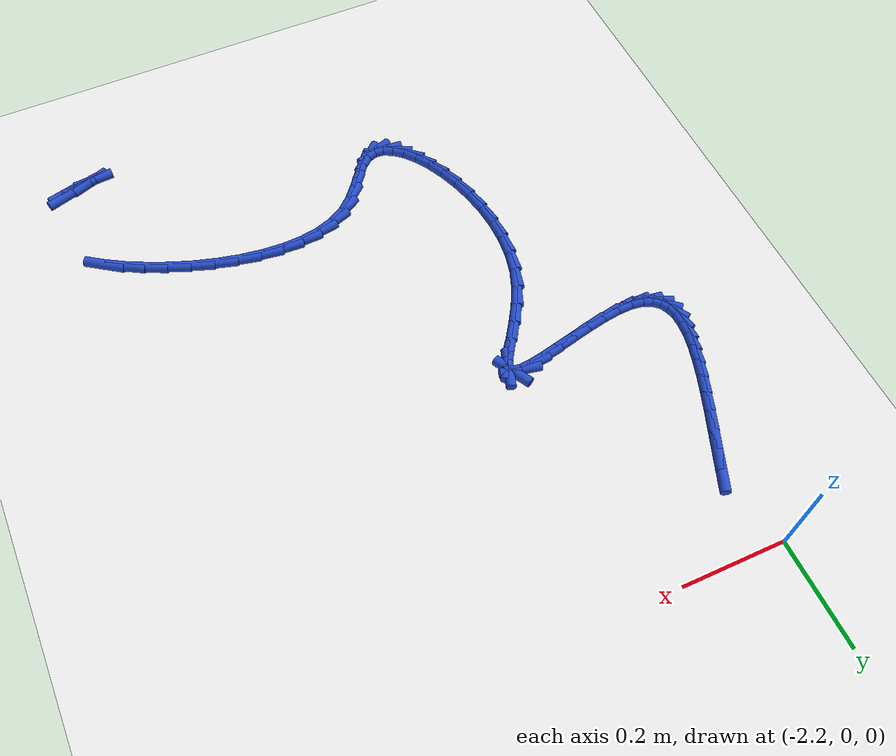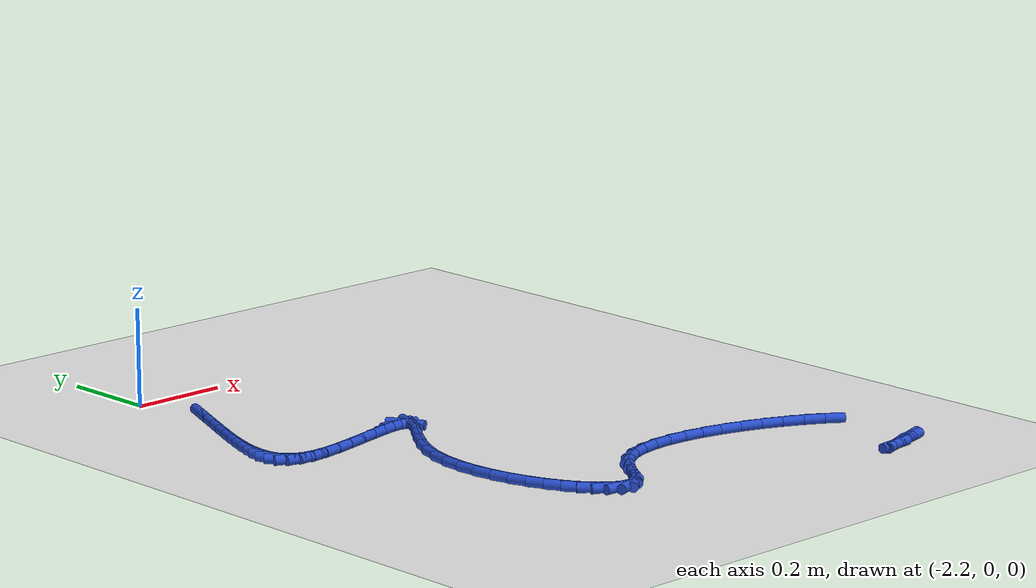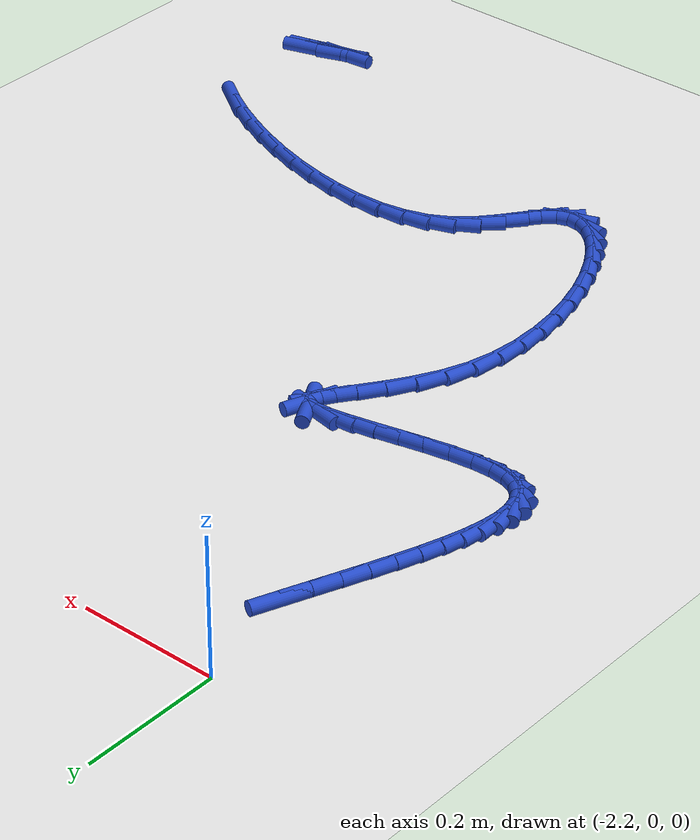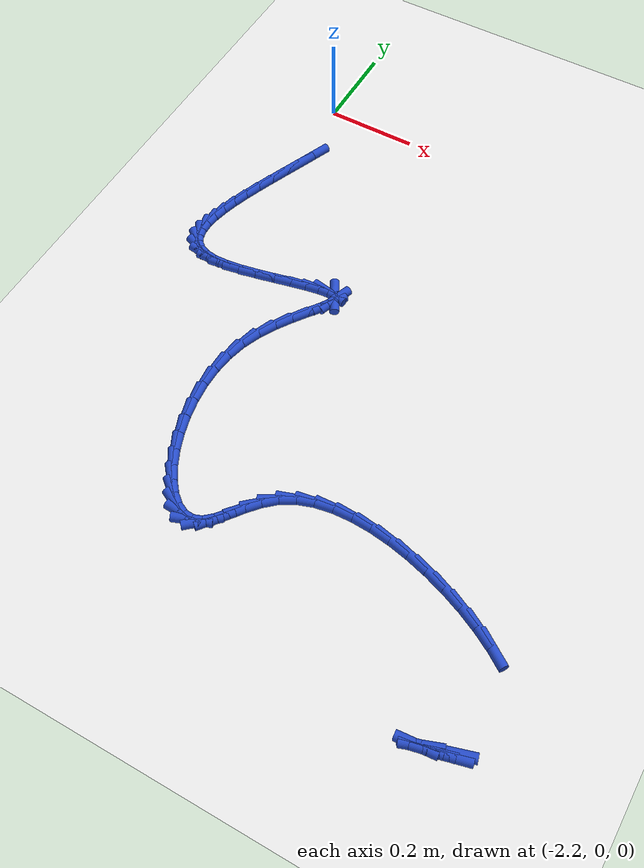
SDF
<sdf version="1.6">
 <world name="default">
  <model name="ground_plane">
   <static>1</static>
   <link name="link">
    <collision name="collision">
     <geometry><plane><normal>0 0 1</normal><size>100 100</size></plane></geometry>
     <surface><friction><ode><mu>100</mu><mu2>50</mu2></ode></friction></surface>
    </collision>
    <visual name="visual">
     <cast_shadows>0</cast_shadows>
     <geometry><plane><normal>0 0 1</normal><size>100 100</size></plane></geometry>
     <material>
      <script><uri>file://media/materials/scripts/gazebo.material</uri><name>Gazebo/WhiteGlow</name></script>
     </material>
    </visual>
   </link>
  </model>
  <model name="line">
   <link name="link_135">
    <pose>-2.1685829158343854 -0.15059904940419178 0.01 0 1.57 1.188751834584261</pose>
    <collision name="collision">
     <geometry><cylinder><radius>0.01</radius><length>0.08</length></cylinder></geometry>
    </collision>
    <visual name="visual">
     <material>
      <script><name>Gazebo/Blue</name><uri>file://media/materials/scripts/gazebo.material</uri></script>
     </material>
     <geometry><cylinder><radius>0.01</radius><length>0.08</length></cylinder></geometry>
    </visual>
   </link>
   <link name="link_136">
    <pose>-2.1838940804013176 -0.18870687479999104 0.01 0 1.57 1.1853321499158203</pose>
    <collision name="collision">
     <geometry><cylinder><radius>0.01</radius><length>0.08</length></cylinder></geometry>
    </collision>
    <visual name="visual">
     <material>
      <script><name>Gazebo/Blue</name><uri>file://media/materials/scripts/gazebo.material</uri></script>
     </material>
     <geometry><cylinder><radius>0.01</radius><length>0.08</length></cylinder></geometry>
    </visual>
   </link>
   <link name="link_137">
    <pose>-2.199023079729025 -0.2259922288696817 0.01 0 1.57 1.1887583359852376</pose>
    <collision name="collision">
     <geometry><cylinder><radius>0.01</radius><length>0.08</length></cylinder></geometry>
    </collision>
    <visual name="visual">
     <material>
      <script><name>Gazebo/Blue</name><uri>file://media/materials/scripts/gazebo.material</uri></script>
     </material>
     <geometry><cylinder><radius>0.01</radius><length>0.08</length></cylinder></geometry>
    </visual>
   </link>
   <link name="link_138">
    <pose>-2.213570374557733 -0.26219954592275063 0.01 0 1.57 1.1998041386808038</pose>
    <collision name="collision">
     <geometry><cylinder><radius>0.01</radius><length>0.08</length></cylinder></geometry>
    </collision>
    <visual name="visual">
     <material>
      <script><name>Gazebo/Blue</name><uri>file://media/materials/scripts/gazebo.material</uri></script>
     </material>
     <geometry><cylinder><radius>0.01</radius><length>0.08</length></cylinder></geometry>
    </visual>
   </link>
   <link name="link_139">
    <pose>-2.2271364256276667 -0.2970732602686849 0.01 0 1.57 1.2198565449811853</pose>
    <collision name="collision">
     <geometry><cylinder><radius>0.01</radius><length>0.08</length></cylinder></geometry>
    </collision>
    <visual name="visual">
     <material>
      <script><name>Gazebo/Blue</name><uri>file://media/materials/scripts/gazebo.material</uri></script>
     </material>
     <geometry><cylinder><radius>0.01</radius><length>0.08</length></cylinder></geometry>
    </visual>
   </link>
   <link name="link_140">
    <pose>-2.2393216936790497 -0.3303578062169718 0.01 0 1.57 1.251194022805272</pose>
    <collision name="collision">
     <geometry><cylinder><radius>0.01</radius><length>0.08</length></cylinder></geometry>
    </collision>
    <visual name="visual">
     <material>
      <script><name>Gazebo/Blue</name><uri>file://media/materials/scripts/gazebo.material</uri></script>
     </material>
     <geometry><cylinder><radius>0.01</radius><length>0.08</length></cylinder></geometry>
    </visual>
   </link>
   <link name="link_141">
    <pose>-2.2497266394521076 -0.36179761807709726 0.01 0 1.57 1.2974709344288846</pose>
    <collision name="collision">
     <geometry><cylinder><radius>0.01</radius><length>0.08</length></cylinder></geometry>
    </collision>
    <visual name="visual">
     <material>
      <script><name>Gazebo/Blue</name><uri>file://media/materials/scripts/gazebo.material</uri></script>
     </material>
     <geometry><cylinder><radius>0.01</radius><length>0.08</length></cylinder></geometry>
    </visual>
   </link>
   <link name="link_142">
    <pose>-2.2579517236870648 -0.3911371301585488 0.01 0 1.57 1.3645454499683918</pose>
    <collision name="collision">
     <geometry><cylinder><radius>0.01</radius><length>0.08</length></cylinder></geometry>
    </collision>
    <visual name="visual">
     <material>
      <script><name>Gazebo/Blue</name><uri>file://media/materials/scripts/gazebo.material</uri></script>
     </material>
     <geometry><cylinder><radius>0.01</radius><length>0.08</length></cylinder></geometry>
    </visual>
   </link>
   <link name="link_143">
    <pose>-2.263597407124147 -0.4181207767708134 0.01 0 1.57 1.4618125145143512</pose>
    <collision name="collision">
     <geometry><cylinder><radius>0.01</radius><length>0.08</length></cylinder></geometry>
    </collision>
    <visual name="visual">
     <material>
      <script><name>Gazebo/Blue</name><uri>file://media/materials/scripts/gazebo.material</uri></script>
     </material>
     <geometry><cylinder><radius>0.01</radius><length>0.08</length></cylinder></geometry>
    </visual>
   </link>
   <link name="link_144">
    <pose>-2.2662641505035785 -0.44249299222337773 0.01 0 1.57 -1.5377124387930412</pose>
    <collision name="collision">
     <geometry><cylinder><radius>0.01</radius><length>0.08</length></cylinder></geometry>
    </collision>
    <visual name="visual">
     <material>
      <script><name>Gazebo/Blue</name><uri>file://media/materials/scripts/gazebo.material</uri></script>
     </material>
     <geometry><cylinder><radius>0.01</radius><length>0.08</length></cylinder></geometry>
    </visual>
   </link>
   <link name="link_145">
    <pose>-2.265552414565583 -0.46399821082572895 0.01 0 1.57 -1.3312474480942038</pose>
    <collision name="collision">
     <geometry><cylinder><radius>0.01</radius><length>0.08</length></cylinder></geometry>
    </collision>
    <visual name="visual">
     <material>
      <script><name>Gazebo/Blue</name><uri>file://media/materials/scripts/gazebo.material</uri></script>
     </material>
     <geometry><cylinder><radius>0.01</radius><length>0.08</length></cylinder></geometry>
    </visual>
   </link>
   <link name="link_146">
    <pose>-2.2610626600503876 -0.48238086688735465 0.01 0 1.57 -1.0469754382298275</pose>
    <collision name="collision">
     <geometry><cylinder><radius>0.01</radius><length>0.08</length></cylinder></geometry>
    </collision>
    <visual name="visual">
     <material>
      <script><name>Gazebo/Blue</name><uri>file://media/materials/scripts/gazebo.material</uri></script>
     </material>
     <geometry><cylinder><radius>0.01</radius><length>0.08</length></cylinder></geometry>
    </visual>
   </link>
   <link name="link_147">
    <pose>-2.252395347698216 -0.49738539471774035 0.01 0 1.57 -0.7094301988057237</pose>
    <collision name="collision">
     <geometry><cylinder><radius>0.01</radius><length>0.08</length></cylinder></geometry>
    </collision>
    <visual name="visual">
     <material>
      <script><name>Gazebo/Blue</name><uri>file://media/materials/scripts/gazebo.material</uri></script>
     </material>
     <geometry><cylinder><radius>0.01</radius><length>0.08</length></cylinder></geometry>
    </visual>
   </link>
   <link name="link_148">
    <pose>-2.239150938249293 -0.5087562286263737 0.01 0 1.57 -0.3896113828113456</pose>
    <collision name="collision">
     <geometry><cylinder><radius>0.01</radius><length>0.08</length></cylinder></geometry>
    </collision>
    <visual name="visual">
     <material>
      <script><name>Gazebo/Blue</name><uri>file://media/materials/scripts/gazebo.material</uri></script>
     </material>
     <geometry><cylinder><radius>0.01</radius><length>0.08</length></cylinder></geometry>
    </visual>
   </link>
   <link name="link_149">
    <pose>-2.2209298924438428 -0.5162378029227417 0.01 0 1.57 -0.14047299721714565</pose>
    <collision name="collision">
     <geometry><cylinder><radius>0.01</radius><length>0.08</length></cylinder></geometry>
    </collision>
    <visual name="visual">
     <material>
      <script><name>Gazebo/Blue</name><uri>file://media/materials/scripts/gazebo.material</uri></script>
     </material>
     <geometry><cylinder><radius>0.01</radius><length>0.08</length></cylinder></geometry>
    </visual>
   </link>
   <link name="link_150">
    <pose>-2.1973326710220915 -0.5195745519163312 0.01 0 1.57 0.03219138986943918</pose>
    <collision name="collision">
     <geometry><cylinder><radius>0.01</radius><length>0.08</length></cylinder></geometry>
    </collision>
    <visual name="visual">
     <material>
      <script><name>Gazebo/Blue</name><uri>file://media/materials/scripts/gazebo.material</uri></script>
     </material>
     <geometry><cylinder><radius>0.01</radius><length>0.08</length></cylinder></geometry>
    </visual>
   </link>
   <link name="link_151">
    <pose>-2.168154587075863 -0.5186349442506576 0.01 0 1.57 0.13218026661702734</pose>
    <collision name="collision">
     <geometry><cylinder><radius>0.01</radius><length>0.08</length></cylinder></geometry>
    </collision>
    <visual name="visual">
     <material>
      <script><name>Gazebo/Blue</name><uri>file://media/materials/scripts/gazebo.material</uri></script>
     </material>
     <geometry><cylinder><radius>0.01</radius><length>0.08</length></cylinder></geometry>
    </visual>
   </link>
   <link name="link_152">
    <pose>-2.134578739253863 -0.5141708510835463 0.01 0 1.57 0.18716526554592833</pose>
    <collision name="collision">
     <geometry><cylinder><radius>0.01</radius><length>0.08</length></cylinder></geometry>
    </collision>
    <visual name="visual">
     <material>
      <script><name>Gazebo/Blue</name><uri>file://media/materials/scripts/gazebo.material</uri></script>
     </material>
     <geometry><cylinder><radius>0.01</radius><length>0.08</length></cylinder></geometry>
    </visual>
   </link>
   <link name="link_153">
    <pose>-2.0983903460632884 -0.5073174262740071 0.01 0 1.57 0.21559991741218837</pose>
    <collision name="collision">
     <geometry><cylinder><radius>0.01</radius><length>0.08</length></cylinder></geometry>
    </collision>
    <visual name="visual">
     <material>
      <script><name>Gazebo/Blue</name><uri>file://media/materials/scripts/gazebo.material</uri></script>
     </material>
     <geometry><cylinder><radius>0.01</radius><length>0.08</length></cylinder></geometry>
    </visual>
   </link>
   <link name="link_154">
    <pose>-2.0613770650865546 -0.4992113762877683 0.01 0 1.57 0.22423270204000023</pose>
    <collision name="collision">
     <geometry><cylinder><radius>0.01</radius><length>0.08</length></cylinder></geometry>
    </collision>
    <visual name="visual">
     <material>
      <script><name>Gazebo/Blue</name><uri>file://media/materials/scripts/gazebo.material</uri></script>
     </material>
     <geometry><cylinder><radius>0.01</radius><length>0.08</length></cylinder></geometry>
    </visual>
   </link>
   <link name="link_155">
    <pose>-2.0253265539060727 -0.4909894075905584 0.01 0 1.57 0.21297170930460618</pose>
    <collision name="collision">
     <geometry><cylinder><radius>0.01</radius><length>0.08</length></cylinder></geometry>
    </collision>
    <visual name="visual">
     <material>
      <script><name>Gazebo/Blue</name><uri>file://media/materials/scripts/gazebo.material</uri></script>
     </material>
     <geometry><cylinder><radius>0.01</radius><length>0.08</length></cylinder></geometry>
    </visual>
   </link>
   <link name="link_156">
    <pose>-1.9920264701042607 -0.48378822664810656 0.01 0 1.57 0.17359436095559513</pose>
    <collision name="collision">
     <geometry><cylinder><radius>0.01</radius><length>0.08</length></cylinder></geometry>
    </collision>
    <visual name="visual">
     <material>
      <script><name>Gazebo/Blue</name><uri>file://media/materials/scripts/gazebo.material</uri></script>
     </material>
     <geometry><cylinder><radius>0.01</radius><length>0.08</length></cylinder></geometry>
    </visual>
   </link>
   <link name="link_157">
    <pose>-1.963264471263532 -0.47874453992614113 0.01 0 1.57 0.07781838162321858</pose>
    <collision name="collision">
     <geometry><cylinder><radius>0.01</radius><length>0.08</length></cylinder></geometry>
    </collision>
    <visual name="visual">
     <material>
      <script><name>Gazebo/Blue</name><uri>file://media/materials/scripts/gazebo.material</uri></script>
     </material>
     <geometry><cylinder><radius>0.01</radius><length>0.08</length></cylinder></geometry>
    </visual>
   </link>
   <link name="link_158">
    <pose>-1.940828214966301 -0.4769950538903908 0.01 0 1.57 -0.18507042938655632</pose>
    <collision name="collision">
     <geometry><cylinder><radius>0.01</radius><length>0.08</length></cylinder></geometry>
    </collision>
    <visual name="visual">
     <material>
      <script><name>Gazebo/Blue</name><uri>file://media/materials/scripts/gazebo.material</uri></script>
     </material>
     <geometry><cylinder><radius>0.01</radius><length>0.08</length></cylinder></geometry>
    </visual>
   </link>
   <link name="link_159">
    <pose>-1.9265053587949819 -0.4796764750065842 0.01 0 1.57 -1.0663387064370065</pose>
    <collision name="collision">
     <geometry><cylinder><radius>0.01</radius><length>0.08</length></cylinder></geometry>
    </collision>
    <visual name="visual">
     <material>
      <script><name>Gazebo/Blue</name><uri>file://media/materials/scripts/gazebo.material</uri></script>
     </material>
     <geometry><cylinder><radius>0.01</radius><length>0.08</length></cylinder></geometry>
    </visual>
   </link>
   <link name="link_160">
    <pose>-1.921975620586445 -0.48788096721622004 0.01 0 1.57 1.2331939402445036</pose>
    <collision name="collision">
     <geometry><cylinder><radius>0.01</radius><length>0.08</length></cylinder></geometry>
    </collision>
    <visual name="visual">
     <material>
      <script><name>Gazebo/Blue</name><uri>file://media/materials/scripts/gazebo.material</uri></script>
     </material>
     <geometry><cylinder><radius>0.01</radius><length>0.08</length></cylinder></geometry>
    </visual>
   </link>
   <link name="link_161">
    <pose>-1.9268830746881518 -0.5018606637659476 0.01 0 1.57 1.0070682929674188</pose>
    <collision name="collision">
     <geometry><cylinder><radius>0.01</radius><length>0.08</length></cylinder></geometry>
    </collision>
    <visual name="visual">
     <material>
      <script><name>Gazebo/Blue</name><uri>file://media/materials/scripts/gazebo.material</uri></script>
     </material>
     <geometry><cylinder><radius>0.01</radius><length>0.08</length></cylinder></geometry>
    </visual>
   </link>
   <link name="link_162">
    <pose>-1.939057278415755 -0.521118917474521 0.01 0 1.57 0.9490550106738508</pose>
    <collision name="collision">
     <geometry><cylinder><radius>0.01</radius><length>0.08</length></cylinder></geometry>
    </collision>
    <visual name="visual">
     <material>
      <script><name>Gazebo/Blue</name><uri>file://media/materials/scripts/gazebo.material</uri></script>
     </material>
     <geometry><cylinder><radius>0.01</radius><length>0.08</length></cylinder></geometry>
    </visual>
   </link>
   <link name="link_163">
    <pose>-1.9562642580357734 -0.5451328643739002 0.01 0 1.57 0.9545548218370333</pose>
    <collision name="collision">
     <geometry><cylinder><radius>0.01</radius><length>0.08</length></cylinder></geometry>
    </collision>
    <visual name="visual">
     <material>
      <script><name>Gazebo/Blue</name><uri>file://media/materials/scripts/gazebo.material</uri></script>
     </material>
     <geometry><cylinder><radius>0.01</radius><length>0.08</length></cylinder></geometry>
    </visual>
   </link>
   <link name="link_164">
    <pose>-1.9762700398147255 -0.5733796404960468 0.01 0 1.57 0.9988614515779011</pose>
    <collision name="collision">
     <geometry><cylinder><radius>0.01</radius><length>0.08</length></cylinder></geometry>
    </collision>
    <visual name="visual">
     <material>
      <script><name>Gazebo/Blue</name><uri>file://media/materials/scripts/gazebo.material</uri></script>
     </material>
     <geometry><cylinder><radius>0.01</radius><length>0.08</length></cylinder></geometry>
    </visual>
   </link>
   <link name="link_165">
    <pose>-1.996840650019129 -0.6053363818729189 0.01 0 1.57 1.0773435265081328</pose>
    <collision name="collision">
     <geometry><cylinder><radius>0.01</radius><length>0.08</length></cylinder></geometry>
    </collision>
    <visual name="visual">
     <material>
      <script><name>Gazebo/Blue</name><uri>file://media/materials/scripts/gazebo.material</uri></script>
     </material>
     <geometry><cylinder><radius>0.01</radius><length>0.08</length></cylinder></geometry>
    </visual>
   </link>
   <link name="link_166">
    <pose>-2.0157421149155033 -0.6404802245364783 0.01 0 1.57 1.193059068633044</pose>
    <collision name="collision">
     <geometry><cylinder><radius>0.01</radius><length>0.08</length></cylinder></geometry>
    </collision>
    <visual name="visual">
     <material>
      <script><name>Gazebo/Blue</name><uri>file://media/materials/scripts/gazebo.material</uri></script>
     </material>
     <geometry><cylinder><radius>0.01</radius><length>0.08</length></cylinder></geometry>
    </visual>
   </link>
   <link name="link_167">
    <pose>-2.030743890994426 -0.678287942381296 0.01 0 1.57 1.3336496728286145</pose>
    <collision name="collision">
     <geometry><cylinder><radius>0.01</radius><length>0.08</length></cylinder></geometry>
    </collision>
    <visual name="visual">
     <material>
      <script><name>Gazebo/Blue</name><uri>file://media/materials/scripts/gazebo.material</uri></script>
     </material>
     <geometry><cylinder><radius>0.01</radius><length>0.08</length></cylinder></geometry>
    </visual>
   </link>
   <link name="link_168">
    <pose>-2.040379693790552 -0.7181556245507059 0.01 0 1.57 1.4611964608040255</pose>
    <collision name="collision">
     <geometry><cylinder><radius>0.01</radius><length>0.08</length></cylinder></geometry>
    </collision>
    <visual name="visual">
     <material>
      <script><name>Gazebo/Blue</name><uri>file://media/materials/scripts/gazebo.material</uri></script>
     </material>
     <geometry><cylinder><radius>0.01</radius><length>0.08</length></cylinder></geometry>
    </visual>
   </link>
   <link name="link_169">
    <pose>-2.044906966812693 -0.7592973818864798 0.01 0 1.57 -1.5686889660001357</pose>
    <collision name="collision">
     <geometry><cylinder><radius>0.01</radius><length>0.08</length></cylinder></geometry>
    </collision>
    <visual name="visual">
     <material>
      <script><name>Gazebo/Blue</name><uri>file://media/materials/scripts/gazebo.material</uri></script>
     </material>
     <geometry><cylinder><radius>0.01</radius><length>0.08</length></cylinder></geometry>
    </visual>
   </link>
   <link name="link_170">
    <pose>-2.044819289907879 -0.8009023957227107 0.01 0 1.57 -1.4691289940774945</pose>
    <collision name="collision">
     <geometry><cylinder><radius>0.01</radius><length>0.08</length></cylinder></geometry>
    </collision>
    <visual name="visual">
     <material>
      <script><name>Gazebo/Blue</name><uri>file://media/materials/scripts/gazebo.material</uri></script>
     </material>
     <geometry><cylinder><radius>0.01</radius><length>0.08</length></cylinder></geometry>
    </visual>
   </link>
   <link name="link_171">
    <pose>-2.0406102429231407 -0.842159847393493 0.01 0 1.57 -1.3777922095920612</pose>
    <collision name="collision">
     <geometry><cylinder><radius>0.01</radius><length>0.08</length></cylinder></geometry>
    </collision>
    <visual name="visual">
     <material>
      <script><name>Gazebo/Blue</name><uri>file://media/materials/scripts/gazebo.material</uri></script>
     </material>
     <geometry><cylinder><radius>0.01</radius><length>0.08</length></cylinder></geometry>
    </visual>
   </link>
   <link name="link_172">
    <pose>-2.032773405705506 -0.8822589182329201 0.01 0 1.57 -1.2906355367662072</pose>
    <collision name="collision">
     <geometry><cylinder><radius>0.01</radius><length>0.08</length></cylinder></geometry>
    </collision>
    <visual name="visual">
     <material>
      <script><name>Gazebo/Blue</name><uri>file://media/materials/scripts/gazebo.material</uri></script>
     </material>
     <geometry><cylinder><radius>0.01</radius><length>0.08</length></cylinder></geometry>
    </visual>
   </link>
   <link name="link_173">
    <pose>-2.0218023581020046 -0.9203887895750866 0.01 0 1.57 -1.2032385895328468</pose>
    <collision name="collision">
     <geometry><cylinder><radius>0.01</radius><length>0.08</length></cylinder></geometry>
    </collision>
    <visual name="visual">
     <material>
      <script><name>Gazebo/Blue</name><uri>file://media/materials/scripts/gazebo.material</uri></script>
     </material>
     <geometry><cylinder><radius>0.01</radius><length>0.08</length></cylinder></geometry>
    </visual>
   </link>
   <link name="link_174">
    <pose>-2.0081906799596676 -0.9557386427540843 0.01 0 1.57 -1.1101957385021597</pose>
    <collision name="collision">
     <geometry><cylinder><radius>0.01</radius><length>0.08</length></cylinder></geometry>
    </collision>
    <visual name="visual">
     <material>
      <script><name>Gazebo/Blue</name><uri>file://media/materials/scripts/gazebo.material</uri></script>
     </material>
     <geometry><cylinder><radius>0.01</radius><length>0.08</length></cylinder></geometry>
    </visual>
   </link>
   <link name="link_175">
    <pose>-1.9924319511255228 -0.9874976591040076 0.01 0 1.57 -1.0039898405419831</pose>
    <collision name="collision">
     <geometry><cylinder><radius>0.01</radius><length>0.08</length></cylinder></geometry>
    </collision>
    <visual name="visual">
     <material>
      <script><name>Gazebo/Blue</name><uri>file://media/materials/scripts/gazebo.material</uri></script>
     </material>
     <geometry><cylinder><radius>0.01</radius><length>0.08</length></cylinder></geometry>
    </visual>
   </link>
   <link name="link_176">
    <pose>-1.975019751446602 -1.0148550199589508 0.01 0 1.57 -0.8729210773231906</pose>
    <collision name="collision">
     <geometry><cylinder><radius>0.01</radius><length>0.08</length></cylinder></geometry>
    </collision>
    <visual name="visual">
     <material>
      <script><name>Gazebo/Blue</name><uri>file://media/materials/scripts/gazebo.material</uri></script>
     </material>
     <geometry><cylinder><radius>0.01</radius><length>0.08</length></cylinder></geometry>
    </visual>
   </link>
   <link name="link_177">
    <pose>-1.9564476607699324 -1.0369999066530067 0.01 0 1.57 -0.6974803551637284</pose>
    <collision name="collision">
     <geometry><cylinder><radius>0.01</radius><length>0.08</length></cylinder></geometry>
    </collision>
    <visual name="visual">
     <material>
      <script><name>Gazebo/Blue</name><uri>file://media/materials/scripts/gazebo.material</uri></script>
     </material>
     <geometry><cylinder><radius>0.01</radius><length>0.08</length></cylinder></geometry>
    </visual>
   </link>
   <link name="link_178">
    <pose>-1.937209258942545 -1.0531215005202699 0.01 0 1.57 -0.4462689232989382</pose>
    <collision name="collision">
     <geometry><cylinder><radius>0.01</radius><length>0.08</length></cylinder></geometry>
    </collision>
    <visual name="visual">
     <material>
      <script><name>Gazebo/Blue</name><uri>file://media/materials/scripts/gazebo.material</uri></script>
     </material>
     <geometry><cylinder><radius>0.01</radius><length>0.08</length></cylinder></geometry>
    </visual>
   </link>
   <link name="link_179">
    <pose>-1.9177981258114687 -1.0624089828948335 0.01 0 1.57 -0.08582987814840623</pose>
    <collision name="collision">
     <geometry><cylinder><radius>0.01</radius><length>0.08</length></cylinder></geometry>
    </collision>
    <visual name="visual">
     <material>
      <script><name>Gazebo/Blue</name><uri>file://media/materials/scripts/gazebo.material</uri></script>
     </material>
     <geometry><cylinder><radius>0.01</radius><length>0.08</length></cylinder></geometry>
    </visual>
   </link>
   <link name="link_180">
    <pose>-1.8987078412237328 -1.064051535110791 0.01 0 1.57 0.3568275402952851</pose>
    <collision name="collision">
     <geometry><cylinder><radius>0.01</radius><length>0.08</length></cylinder></geometry>
    </collision>
    <visual name="visual">
     <material>
      <script><name>Gazebo/Blue</name><uri>file://media/materials/scripts/gazebo.material</uri></script>
     </material>
     <geometry><cylinder><radius>0.01</radius><length>0.08</length></cylinder></geometry>
    </visual>
   </link>
   <link name="link_181">
    <pose>-1.880431896039518 -1.0572385327105132 0.01 0 1.57 0.7244905419908453</pose>
    <collision name="collision">
     <geometry><cylinder><radius>0.01</radius><length>0.08</length></cylinder></geometry>
    </collision>
    <visual name="visual">
     <material>
      <script><name>Gazebo/Blue</name><uri>file://media/materials/scripts/gazebo.material</uri></script>
     </material>
     <geometry><cylinder><radius>0.01</radius><length>0.08</length></cylinder></geometry>
    </visual>
   </link>
   <link name="link_182">
    <pose>-1.8631176832954779 -1.0419146882552566 0.01 0 1.57 0.8904707264289186</pose>
    <collision name="collision">
     <geometry><cylinder><radius>0.01</radius><length>0.08</length></cylinder></geometry>
    </collision>
    <visual name="visual">
     <material>
      <script><name>Gazebo/Blue</name><uri>file://media/materials/scripts/gazebo.material</uri></script>
     </material>
     <geometry><cylinder><radius>0.01</radius><length>0.08</length></cylinder></geometry>
    </visual>
   </link>
   <link name="link_183">
    <pose>-1.8457822099314707 -1.0204917118038177 0.01 0 1.57 0.9243248411454703</pose>
    <collision name="collision">
     <geometry><cylinder><radius>0.01</radius><length>0.08</length></cylinder></geometry>
    </collision>
    <visual name="visual">
     <material>
      <script><name>Gazebo/Blue</name><uri>file://media/materials/scripts/gazebo.material</uri></script>
     </material>
     <geometry><cylinder><radius>0.01</radius><length>0.08</length></cylinder></geometry>
    </visual>
   </link>
   <link name="link_184">
    <pose>-1.8272120788145925 -0.9958841560035057 0.01 0 1.57 0.8692912577590345</pose>
    <collision name="collision">
     <geometry><cylinder><radius>0.01</radius><length>0.08</length></cylinder></geometry>
    </collision>
    <visual name="visual">
     <material>
      <script><name>Gazebo/Blue</name><uri>file://media/materials/scripts/gazebo.material</uri></script>
     </material>
     <geometry><cylinder><radius>0.01</radius><length>0.08</length></cylinder></geometry>
    </visual>
   </link>
   <link name="link_185">
    <pose>-1.8061938928119388 -0.9710065735016288 0.01 0 1.57 0.7332935673868924</pose>
    <collision name="collision">
     <geometry><cylinder><radius>0.01</radius><length>0.08</length></cylinder></geometry>
    </collision>
    <visual name="visual">
     <material>
      <script><name>Gazebo/Blue</name><uri>file://media/materials/scripts/gazebo.material</uri></script>
     </material>
     <geometry><cylinder><radius>0.01</radius><length>0.08</length></cylinder></geometry>
    </visual>
   </link>
   <link name="link_186">
    <pose>-1.7815142547906055 -0.9487735169454958 0.01 0 1.57 0.5271488662412437</pose>
    <collision name="collision">
     <geometry><cylinder><radius>0.01</radius><length>0.08</length></cylinder></geometry>
    </collision>
    <visual name="visual">
     <material>
      <script><name>Gazebo/Blue</name><uri>file://media/materials/scripts/gazebo.material</uri></script>
     </material>
     <geometry><cylinder><radius>0.01</radius><length>0.08</length></cylinder></geometry>
    </visual>
   </link>
   <link name="link_187">
    <pose>-1.7521924461462035 -0.9317054837463805 0.01 0 1.57 0.33092806616945597</pose>
    <collision name="collision">
     <geometry><cylinder><radius>0.01</radius><length>0.08</length></cylinder></geometry>
    </collision>
    <visual name="visual">
     <material>
      <script><name>Gazebo/Blue</name><uri>file://media/materials/scripts/gazebo.material</uri></script>
     </material>
     <geometry><cylinder><radius>0.01</radius><length>0.08</length></cylinder></geometry>
    </visual>
   </link>
   <link name="link_188">
    <pose>-1.7185354285348122 -0.9201422064971839 0.01 0 1.57 0.17198374091264274</pose>
    <collision name="collision">
     <geometry><cylinder><radius>0.01</radius><length>0.08</length></cylinder></geometry>
    </collision>
    <visual name="visual">
     <material>
      <script><name>Gazebo/Blue</name><uri>file://media/materials/scripts/gazebo.material</uri></script>
     </material>
     <geometry><cylinder><radius>0.01</radius><length>0.08</length></cylinder></geometry>
    </visual>
   </link>
   <link name="link_189">
    <pose>-1.6812931286091408 -0.9136732296345766 0.01 0 1.57 0.044530004359729286</pose>
    <collision name="collision">
     <geometry><cylinder><radius>0.01</radius><length>0.08</length></cylinder></geometry>
    </collision>
    <visual name="visual">
     <material>
      <script><name>Gazebo/Blue</name><uri>file://media/materials/scripts/gazebo.material</uri></script>
     </material>
     <geometry><cylinder><radius>0.01</radius><length>0.08</length></cylinder></geometry>
    </visual>
   </link>
   <link name="link_190">
    <pose>-1.6412158796032486 -0.9118874090249808 0.01 0 1.57 -0.05889957322631907</pose>
    <collision name="collision">
     <geometry><cylinder><radius>0.01</radius><length>0.08</length></cylinder></geometry>
    </collision>
    <visual name="visual">
     <material>
      <script><name>Gazebo/Blue</name><uri>file://media/materials/scripts/gazebo.material</uri></script>
     </material>
     <geometry><cylinder><radius>0.01</radius><length>0.08</length></cylinder></geometry>
    </visual>
   </link>
   <link name="link_191">
    <pose>-1.599054014751202 -0.9143736005348196 0.01 0 1.57 -0.14489964750556164</pose>
    <collision name="collision">
     <geometry><cylinder><radius>0.01</radius><length>0.08</length></cylinder></geometry>
    </collision>
    <visual name="visual">
     <material>
      <script><name>Gazebo/Blue</name><uri>file://media/materials/scripts/gazebo.material</uri></script>
     </material>
     <geometry><cylinder><radius>0.01</radius><length>0.08</length></cylinder></geometry>
    </visual>
   </link>
   <link name="link_192">
    <pose>-1.5555578672870631 -0.9207206600305159 0.01 0 1.57 -0.218695023392393</pose>
    <collision name="collision">
     <geometry><cylinder><radius>0.01</radius><length>0.08</length></cylinder></geometry>
    </collision>
    <visual name="visual">
     <material>
      <script><name>Gazebo/Blue</name><uri>file://media/materials/scripts/gazebo.material</uri></script>
     </material>
     <geometry><cylinder><radius>0.01</radius><length>0.08</length></cylinder></geometry>
    </visual>
   </link>
   <link name="link_193">
    <pose>-1.5114777704448938 -0.9305174433784922 0.01 0 1.57 -0.2843647823591738</pose>
    <collision name="collision">
     <geometry><cylinder><radius>0.01</radius><length>0.08</length></cylinder></geometry>
    </collision>
    <visual name="visual">
     <material>
      <script><name>Gazebo/Blue</name><uri>file://media/materials/scripts/gazebo.material</uri></script>
     </material>
     <geometry><cylinder><radius>0.01</radius><length>0.08</length></cylinder></geometry>
    </visual>
   </link>
   <link name="link_194">
    <pose>-1.4675640574587578 -0.943352806445172 0.01 0 1.57 -0.34522364742508616</pose>
    <collision name="collision">
     <geometry><cylinder><radius>0.01</radius><length>0.08</length></cylinder></geometry>
    </collision>
    <visual name="visual">
     <material>
      <script><name>Gazebo/Blue</name><uri>file://media/materials/scripts/gazebo.material</uri></script>
     </material>
     <geometry><cylinder><radius>0.01</radius><length>0.08</length></cylinder></geometry>
    </visual>
   </link>
   <link name="link_195">
    <pose>-1.4245670615627173 -0.9588156050969774 0.01 0 1.57 -0.404201825423591</pose>
    <collision name="collision">
     <geometry><cylinder><radius>0.01</radius><length>0.08</length></cylinder></geometry>
    </collision>
    <visual name="visual">
     <material>
      <script><name>Gazebo/Blue</name><uri>file://media/materials/scripts/gazebo.material</uri></script>
     </material>
     <geometry><cylinder><radius>0.01</radius><length>0.08</length></cylinder></geometry>
    </visual>
   </link>
   <link name="link_196">
    <pose>-1.3832371159908357 -0.9764946952003322 0.01 0 1.57 -0.4642221973241427</pose>
    <collision name="collision">
     <geometry><cylinder><radius>0.01</radius><length>0.08</length></cylinder></geometry>
    </collision>
    <visual name="visual">
     <material>
      <script><name>Gazebo/Blue</name><uri>file://media/materials/scripts/gazebo.material</uri></script>
     </material>
     <geometry><cylinder><radius>0.01</radius><length>0.08</length></cylinder></geometry>
    </visual>
   </link>
   <link name="link_197">
    <pose>-1.3443245539771753 -0.9959789326216588 0.01 0 1.57 -0.528639530487558</pose>
    <collision name="collision">
     <geometry><cylinder><radius>0.01</radius><length>0.08</length></cylinder></geometry>
    </collision>
    <visual name="visual">
     <material>
      <script><name>Gazebo/Blue</name><uri>file://media/materials/scripts/gazebo.material</uri></script>
     </material>
     <geometry><cylinder><radius>0.01</radius><length>0.08</length></cylinder></geometry>
    </visual>
   </link>
   <link name="link_198">
    <pose>-1.3085797087557993 -1.0168571732273797 0.01 0 1.57 -0.6018643072191647</pose>
    <collision name="collision">
     <geometry><cylinder><radius>0.01</radius><length>0.08</length></cylinder></geometry>
    </collision>
    <visual name="visual">
     <material>
      <script><name>Gazebo/Blue</name><uri>file://media/materials/scripts/gazebo.material</uri></script>
     </material>
     <geometry><cylinder><radius>0.01</radius><length>0.08</length></cylinder></geometry>
    </visual>
   </link>
   <link name="link_208">
    <pose>-1.285044034592126 -1.2119462197978255 0.01 0 1.57 0.2950682974970335</pose>
    <collision name="collision">
     <geometry><cylinder><radius>0.01</radius><length>0.08</length></cylinder></geometry>
    </collision>
    <visual name="visual">
     <material>
      <script><name>Gazebo/Blue</name><uri>file://media/materials/scripts/gazebo.material</uri></script>
     </material>
     <geometry><cylinder><radius>0.01</radius><length>0.08</length></cylinder></geometry>
    </visual>
   </link>
   <link name="link_209">
    <pose>-1.3158665381970212 -1.2213144369756006 0.01 0 1.57 0.2692980849502897</pose>
    <collision name="collision">
     <geometry><cylinder><radius>0.01</radius><length>0.08</length></cylinder></geometry>
    </collision>
    <visual name="visual">
     <material>
      <script><name>Gazebo/Blue</name><uri>file://media/materials/scripts/gazebo.material</uri></script>
     </material>
     <geometry><cylinder><radius>0.01</radius><length>0.08</length></cylinder></geometry>
    </visual>
   </link>
   <link name="link_210">
    <pose>-1.3382092416005282 -1.227481081300774 0.01 0 1.57 0.348985116733405</pose>
    <collision name="collision">
     <geometry><cylinder><radius>0.01</radius><length>0.08</length></cylinder></geometry>
    </collision>
    <visual name="visual">
     <material>
      <script><name>Gazebo/Blue</name><uri>file://media/materials/scripts/gazebo.material</uri></script>
     </material>
     <geometry><cylinder><radius>0.01</radius><length>0.08</length></cylinder></geometry>
    </visual>
   </link>
   <link name="link_211">
    <pose>-1.3457052524738065 -1.2302087208032122 0.01 0 1.57 0.08342123025059636</pose>
    <collision name="collision">
     <geometry><cylinder><radius>0.01</radius><length>0.08</length></cylinder></geometry>
    </collision>
    <visual name="visual">
     <material>
      <script><name>Gazebo/Blue</name><uri>file://media/materials/scripts/gazebo.material</uri></script>
     </material>
     <geometry><cylinder><radius>0.01</radius><length>0.08</length></cylinder></geometry>
    </visual>
   </link>
   <link name="link_212">
    <pose>-1.3381980381033163 -1.2295810029512237 0.01 0 1.57 0.1866860009923924</pose>
    <collision name="collision">
     <geometry><cylinder><radius>0.01</radius><length>0.08</length></cylinder></geometry>
    </collision>
    <visual name="visual">
     <material>
      <script><name>Gazebo/Blue</name><uri>file://media/materials/scripts/gazebo.material</uri></script>
     </material>
     <geometry><cylinder><radius>0.01</radius><length>0.08</length></cylinder></geometry>
    </visual>
   </link>
   <link name="link_213">
    <pose>-1.3183158732120854 -1.2258255514823333 0.01 0 1.57 0.2210365358470979</pose>
    <collision name="collision">
     <geometry><cylinder><radius>0.01</radius><length>0.08</length></cylinder></geometry>
    </collision>
    <visual name="visual">
     <material>
      <script><name>Gazebo/Blue</name><uri>file://media/materials/scripts/gazebo.material</uri></script>
     </material>
     <geometry><cylinder><radius>0.01</radius><length>0.08</length></cylinder></geometry>
    </visual>
   </link>
   <link name="link_214">
    <pose>-1.2887001964168592 -1.2191706707155248 0.01 0 1.57 0.24879706370691387</pose>
    <collision name="collision">
     <geometry><cylinder><radius>0.01</radius><length>0.08</length></cylinder></geometry>
    </collision>
    <visual name="visual">
     <material>
      <script><name>Gazebo/Blue</name><uri>file://media/materials/scripts/gazebo.material</uri></script>
     </material>
     <geometry><cylinder><radius>0.01</radius><length>0.08</length></cylinder></geometry>
    </visual>
   </link>
  </model>
 </world>
</sdf>
